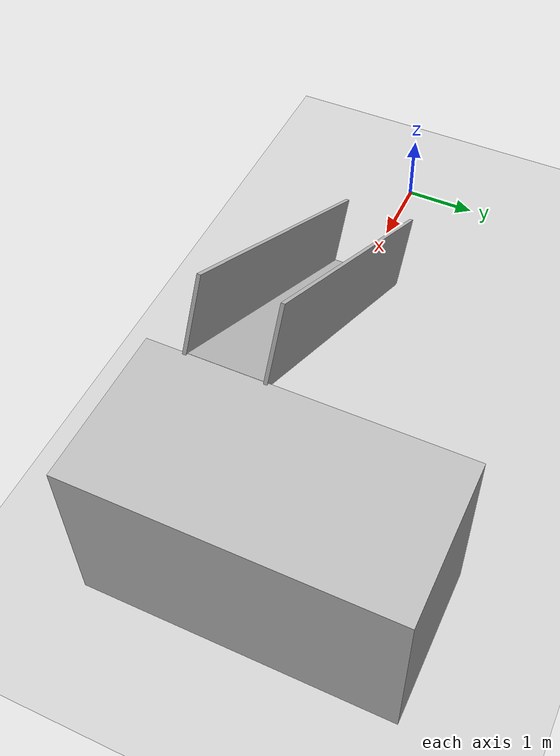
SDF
<?xml version="1.0" ?>
<sdf version="1.4">
	<world name="default">
		<scene>
			<shadows>false</shadows>
		</scene>
		<gui>
			<camera name="camera">
				<pose>3.0 0.0 1.0 0.0 0.3 3.14</pose>
			</camera>
		</gui>
		<physics type="ode">
			<gravity>0 0 -9.81</gravity>
			<real_time_update_rate>2000</real_time_update_rate>
			<max_step_size>0.0005</max_step_size>
			<ode>
				<solver>
					<type>quick</type>
					<iters>70</iters>
					<sor>1.2</sor>
				</solver>
				<constraints>
 					<cfm>0.0</cfm>
					<erp>0.2</erp>
					<contact_max_correcting_vel>100.0</contact_max_correcting_vel>
					<contact_surface_layer>0.001</contact_surface_layer>
				</constraints>
			</ode>
		</physics>
		<include>
			<uri>model://ground_plane</uri>
		</include>
		<include>
			<uri>model://sun</uri>
		</include>

		<model name="ramp">
			<pose>3.93 0 1.2 0 -0.5235987 0</pose>

			<static>true</static>
			<link name="link">
				<visual name="visual0">
					<geometry>
						<box>
							<size>4.79 0.95 0.01</size>
						</box>
					</geometry>
				</visual>
				<collision name="collision0">
					<geometry>
						<box>
							<size>4.79 0.95 0.01</size>
						</box>
					</geometry>
					<surface>
						<friction>
							<ode>
								<mu>100000</mu>
								<mu2>100000</mu2>
							</ode>
						</friction>
					</surface>
				</collision>
			</link>
		</model>

		<model name="platform">
			<pose>7 1 1.2 0 0 0</pose>

			<static>true</static>
			<link name="link">
				<visual name="visual0">
					<geometry>
						<box>
							<size>2 4 2.4</size>
						</box>
					</geometry>
				</visual>
				<collision name="collision0">
					<geometry>
						<box>
							<size>2 4 2.4</size>
						</box>
					</geometry>
				</collision>
			</link>
		</model>

		<model name="handrail_left">
			<pose>3.73 0.5 1.6 0 -0.5235987 0</pose>

			<static>true</static>
			<link name="link">
				<visual name="visual0">
					<geometry>
						<box>
							<size>4.79 0.05 1</size>
						</box>
					</geometry>
				</visual>
				<collision name="collision0">
					<geometry>
						<box>
							<size>4.79 0.05 1</size>
						</box>
					</geometry>
				</collision>
			</link>
		</model>

		<model name="handrail_right">
			<pose>3.73 -0.5 1.6 0 -0.5235987 0</pose>

			<static>true</static>
			<link name="link">
				<visual name="visual0">
					<geometry>
						<box>
							<size>4.79 0.05 1</size>
						</box>
					</geometry>
				</visual>
				<collision name="collision0">
					<geometry>
						<box>
							<size>4.79 0.05 1</size>
						</box>
					</geometry>
				</collision>
			</link>
		</model>
	</world>
</sdf>
